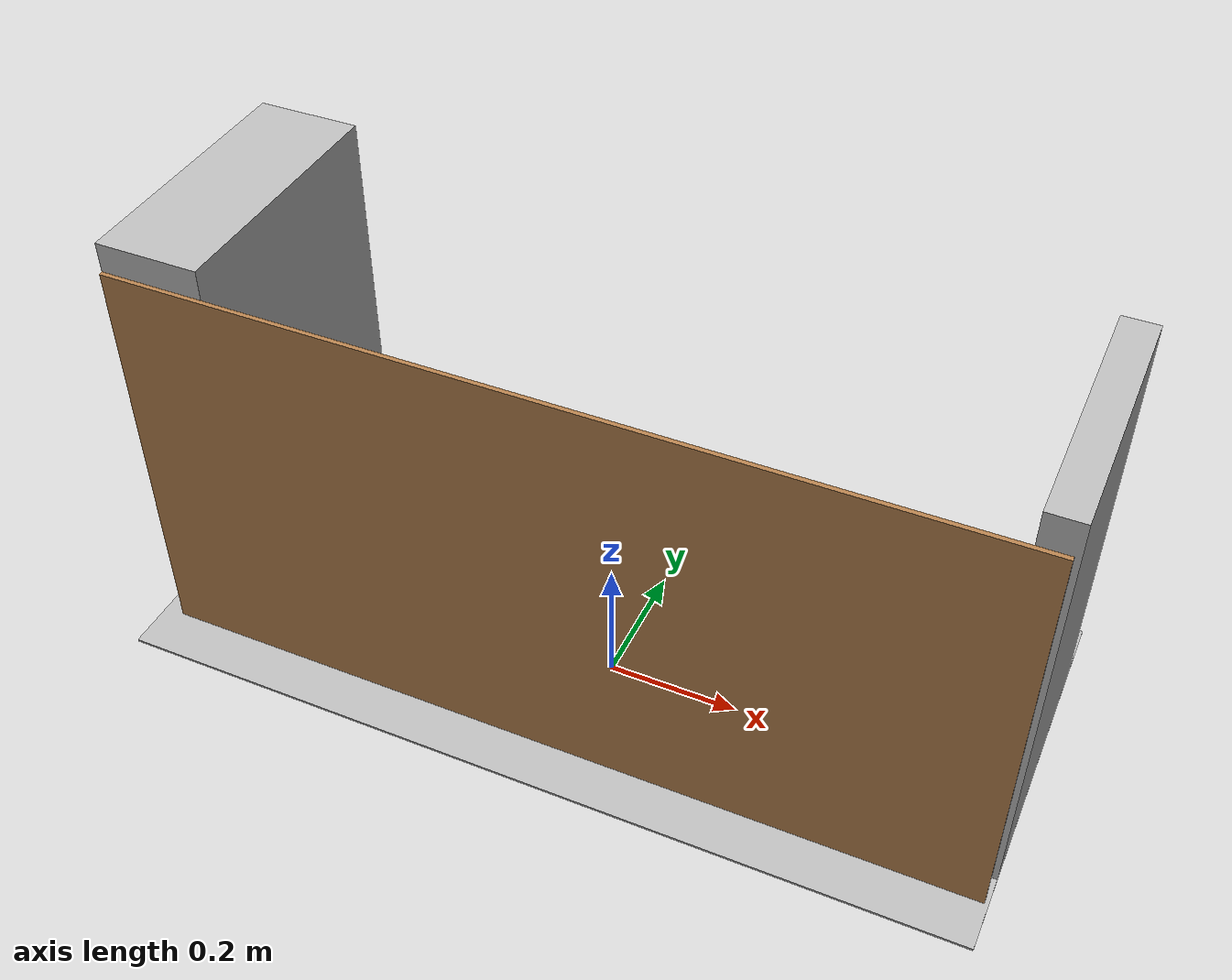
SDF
<?xml version="1.0" ?>
<sdf version="1.5">
  <model name="frc2016_sallyport">
    <link name="base">
      <inertial>
        <mass>50</mass>
        <pose>0 0 0.35406 0 0 0</pose>
        <inertia>
          <ixx>0.727808333</ixx>
          <ixy>0</ixy>
          <ixz>0</ixz>
          <iyy>1.774884167</iyy>
          <iyz>0</iyz>
          <izz>1.641090833</izz>
        </inertia>
      </inertial>

      <visual name="platform">
        <pose>0 0 0.06974 0 0 0</pose>
        <geometry>
          <box>
            <size>1.27 0.5969 0.003175</size>
          </box>
        </geometry>
      </visual>
      <collision name="platform">
        <pose>0 0 0.06974 0 0 0</pose>
        <geometry>
          <box>
            <size>1.27 0.5969 0.003175</size>
          </box>
        </geometry>
      </collision>

      <visual name="left_column">
        <pose>-0.5588 0.00318 0.38876 0 0 0</pose>
        <geometry>
          <box>
            <size>0.1524 0.38735 0.635</size>
          </box>
        </geometry>
      </visual>
      <collision name="left_column">
        <pose>-0.5588 0.00318 0.38876 0 0 0</pose>
        <geometry>
          <box>
            <size>0.1524 0.38735 0.635</size>
          </box>
        </geometry>
      </collision>

      <visual name="right_column">
        <pose>0.6096 0.00635 0.38876 0 0 0</pose>
        <geometry>
          <box>
            <size>0.0508 0.381 0.635</size>
          </box>
        </geometry>
      </visual>
      <collision name="right_column">
        <pose>0.6096 0.00635 0.38876 0 0 0</pose>
        <geometry>
          <box>
            <size>0.0508 0.381 0.635</size>
          </box>
        </geometry>
      </collision>

      <visual name="castor1">
        <pose>-0.45886 0.15389 0.03487 0 0 0</pose>
        <geometry>
          <sphere>
            <radius>0.03487</radius>
          </sphere>
        </geometry>
      </visual>
      <collision name="castor1">
        <pose>-0.45886 0.15389 0.03487 0 0 0</pose>
        <geometry>
          <sphere>
            <radius>0.03487</radius>
          </sphere>
        </geometry>
      </collision>

      <visual name="castor2">
        <pose>-0.28117 -0.22559 0.03487 0 0 0</pose>
        <geometry>
          <sphere>
            <radius>0.03487</radius>
          </sphere>
        </geometry>
      </visual>
      <collision name="castor2">
        <pose>-0.28117 -0.22559 0.03487 0 0 0</pose>
        <geometry>
          <sphere>
            <radius>0.03487</radius>
          </sphere>
        </geometry>
      </collision>

      <visual name="castor3">
        <pose>0.27933 -0.2272 0.03487 0 0 0</pose>
        <geometry>
          <sphere>
            <radius>0.03487</radius>
          </sphere>
        </geometry>
      </visual>
      <collision name="castor3">
        <pose>0.27933 -0.2272 0.03487 0 0 0</pose>
        <geometry>
          <sphere>
            <radius>0.03487</radius>
          </sphere>
        </geometry>
      </collision>

      <visual name="castor4">
        <pose>0.4571 0.15424 0.03487 0 0 0</pose>
        <geometry>
          <sphere>
            <radius>0.03487</radius>
          </sphere>
        </geometry>
      </visual>
      <collision name="castor4">
        <pose>0.4571 0.15424 0.03487 0 0 0</pose>
        <geometry>
          <sphere>
            <radius>0.03487</radius>
          </sphere>
        </geometry>
      </collision>
    </link>

    <link name="door">
      <pose>0.02255 -0.24321 0.40332 0 0 0</pose>

      <inertial>
        <pose>0 0 0 -1.5707 0 0</pose>
        <mass>2</mass>
        <inertia>
          <ixx>0.06194208</ixx>
          <ixy>0</ixy>
          <ixz>0</ixz>
          <iyy>0.246461547</iyy>
          <iyz>0</iyz>
          <izz>0.308390187</izz>
        </inertia>
      </inertial>

      <visual name="visual">
        <geometry>
          <box>
            <size>1.21603 0.00635 0.6096</size>
          </box>
        </geometry>
        <material>
          <script>
            <name>Gazebo/WoodFloor</name>
          </script>
        </material>
      </visual>
      <collision name="collision">
        <geometry>
          <box>
            <size>1.21603 0.00635 0.6096</size>
          </box>
        </geometry>
      </collision>
    </link>

    <joint type="revolute" name="door_joint">
      <pose>-0.608015 0 0 0 0 0</pose>
      <parent>base</parent>
      <child>door</child>
      <axis>
        <xyz>0 0 1</xyz>
        <limit>
          <lower>-3.1415</lower>
          <upper>0</upper>
        </limit>
      </axis>
    </joint>

  </model>
</sdf>
